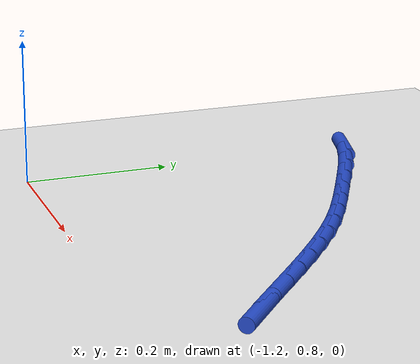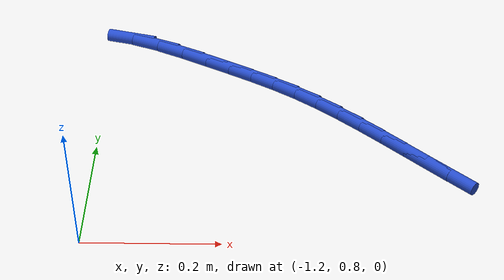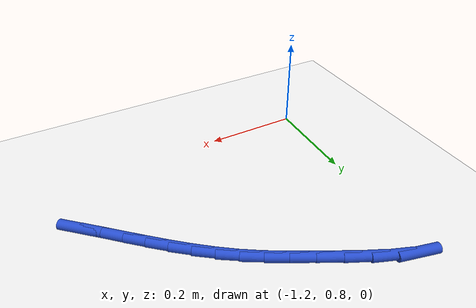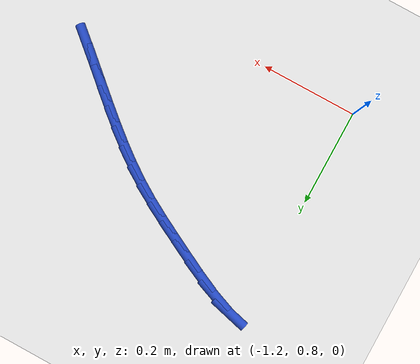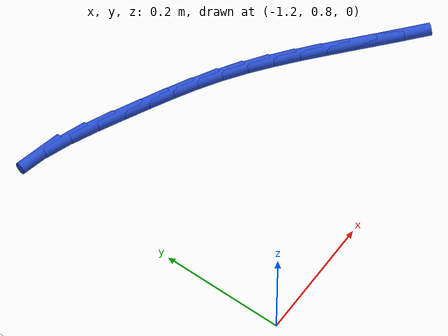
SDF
<sdf version="1.6">
 <world name="default">
  <model name="ground_plane">
   <static>1</static>
   <link name="link">
    <collision name="collision">
     <geometry><plane><normal>0 0 1</normal><size>100 100</size></plane></geometry>
     <surface><friction><ode><mu>100</mu><mu2>50</mu2></ode></friction></surface>
    </collision>
    <visual name="visual">
     <cast_shadows>0</cast_shadows>
     <geometry><plane><normal>0 0 1</normal><size>100 100</size></plane></geometry>
     <material>
      <script><uri>file://media/materials/scripts/gazebo.material</uri><name>Gazebo/WhiteGlow</name></script>
     </material>
    </visual>
   </link>
  </model>
  <model name="line">
   <link name="link_28">
    <pose>-0.667292698881509 0.9317010061118095 0.01 0 1.57 -0.7191388566225841</pose>
    <collision name="collision">
     <geometry><cylinder><radius>0.01</radius><length>0.08</length></cylinder></geometry>
    </collision>
    <visual name="visual">
     <material>
      <script><name>Gazebo/Blue</name><uri>file://media/materials/scripts/gazebo.material</uri></script>
     </material>
     <geometry><cylinder><radius>0.01</radius><length>0.08</length></cylinder></geometry>
    </visual>
   </link>
   <link name="link_29">
    <pose>-0.7001576919193321 0.960475801988674 0.01 0 1.57 -0.7274101344294757</pose>
    <collision name="collision">
     <geometry><cylinder><radius>0.01</radius><length>0.08</length></cylinder></geometry>
    </collision>
    <visual name="visual">
     <material>
      <script><name>Gazebo/Blue</name><uri>file://media/materials/scripts/gazebo.material</uri></script>
     </material>
     <geometry><cylinder><radius>0.01</radius><length>0.08</length></cylinder></geometry>
    </visual>
   </link>
   <link name="link_30">
    <pose>-0.7325665418395403 0.9893282432157199 0.01 0 1.57 -0.7258031718105259</pose>
    <collision name="collision">
     <geometry><cylinder><radius>0.01</radius><length>0.08</length></cylinder></geometry>
    </collision>
    <visual name="visual">
     <material>
      <script><name>Gazebo/Blue</name><uri>file://media/materials/scripts/gazebo.material</uri></script>
     </material>
     <geometry><cylinder><radius>0.01</radius><length>0.08</length></cylinder></geometry>
    </visual>
   </link>
   <link name="link_31">
    <pose>-0.7647657313230898 1.017901410887493 0.01 0 1.57 -0.7140747260560818</pose>
    <collision name="collision">
     <geometry><cylinder><radius>0.01</radius><length>0.08</length></cylinder></geometry>
    </collision>
    <visual name="visual">
     <material>
      <script><name>Gazebo/Blue</name><uri>file://media/materials/scripts/gazebo.material</uri></script>
     </material>
     <geometry><cylinder><radius>0.01</radius><length>0.08</length></cylinder></geometry>
    </visual>
   </link>
   <link name="link_32">
    <pose>-0.7970017430509369 1.0458383860985394 0.01 0 1.57 -0.6919083852375368</pose>
    <collision name="collision">
     <geometry><cylinder><radius>0.01</radius><length>0.08</length></cylinder></geometry>
    </collision>
    <visual name="visual">
     <material>
      <script><name>Gazebo/Blue</name><uri>file://media/materials/scripts/gazebo.material</uri></script>
     </material>
     <geometry><cylinder><radius>0.01</radius><length>0.08</length></cylinder></geometry>
    </visual>
   </link>
   <link name="link_33">
    <pose>-0.8295210597040381 1.072782249943405 0.01 0 1.57 -0.6589465915032207</pose>
    <collision name="collision">
     <geometry><cylinder><radius>0.01</radius><length>0.08</length></cylinder></geometry>
    </collision>
    <visual name="visual">
     <material>
      <script><name>Gazebo/Blue</name><uri>file://media/materials/scripts/gazebo.material</uri></script>
     </material>
     <geometry><cylinder><radius>0.01</radius><length>0.08</length></cylinder></geometry>
    </visual>
   </link>
   <link name="link_34">
    <pose>-0.8625701639633494 1.098376083516635 0.01 0 1.57 -0.6148631902702463</pose>
    <collision name="collision">
     <geometry><cylinder><radius>0.01</radius><length>0.08</length></cylinder></geometry>
    </collision>
    <visual name="visual">
     <material>
      <script><name>Gazebo/Blue</name><uri>file://media/materials/scripts/gazebo.material</uri></script>
     </material>
     <geometry><cylinder><radius>0.01</radius><length>0.08</length></cylinder></geometry>
    </visual>
   </link>
   <link name="link_35">
    <pose>-0.8963955385098271 1.1222629679127754 0.01 0 1.57 -0.5618458516017223</pose>
    <collision name="collision">
     <geometry><cylinder><radius>0.01</radius><length>0.08</length></cylinder></geometry>
    </collision>
    <visual name="visual">
     <material>
      <script><name>Gazebo/Blue</name><uri>file://media/materials/scripts/gazebo.material</uri></script>
     </material>
     <geometry><cylinder><radius>0.01</radius><length>0.08</length></cylinder></geometry>
    </visual>
   </link>
   <link name="link_36">
    <pose>-0.9312535462861457 1.144206917255133 0.01 0 1.57 -0.51687509385871</pose>
    <collision name="collision">
     <geometry><cylinder><radius>0.01</radius><length>0.08</length></cylinder></geometry>
    </collision>
    <visual name="visual">
     <material>
      <script><name>Gazebo/Blue</name><uri>file://media/materials/scripts/gazebo.material</uri></script>
     </material>
     <geometry><cylinder><radius>0.01</radius><length>0.08</length></cylinder></geometry>
    </visual>
   </link>
   <link name="link_37">
    <pose>-0.9674675212022595 1.164791660988698 0.01 0 1.57 -0.4884160553401611</pose>
    <collision name="collision">
     <geometry><cylinder><radius>0.01</radius><length>0.08</length></cylinder></geometry>
    </collision>
    <visual name="visual">
     <material>
      <script><name>Gazebo/Blue</name><uri>file://media/materials/scripts/gazebo.material</uri></script>
     </material>
     <geometry><cylinder><radius>0.01</radius><length>0.08</length></cylinder></geometry>
    </visual>
   </link>
   <link name="link_38">
    <pose>-1.005388599582561 1.184941226242959 0.01 0 1.57 -0.47653960126167877</pose>
    <collision name="collision">
     <geometry><cylinder><radius>0.01</radius><length>0.08</length></cylinder></geometry>
    </collision>
    <visual name="visual">
     <material>
      <script><name>Gazebo/Blue</name><uri>file://media/materials/scripts/gazebo.material</uri></script>
     </material>
     <geometry><cylinder><radius>0.01</radius><length>0.08</length></cylinder></geometry>
    </visual>
   </link>
   <link name="link_39">
    <pose>-1.04536704280676 1.2055789160305022 0.01 0 1.57 -0.46850079729720323</pose>
    <collision name="collision">
     <geometry><cylinder><radius>0.01</radius><length>0.08</length></cylinder></geometry>
    </collision>
    <visual name="visual">
     <material>
      <script><name>Gazebo/Blue</name><uri>file://media/materials/scripts/gazebo.material</uri></script>
     </material>
     <geometry><cylinder><radius>0.01</radius><length>0.08</length></cylinder></geometry>
    </visual>
   </link>
   <link name="link_40">
    <pose>-1.0873217931283763 1.2268114301923025 0.01 0 1.57 -0.4344861967894188</pose>
    <collision name="collision">
     <geometry><cylinder><radius>0.01</radius><length>0.08</length></cylinder></geometry>
    </collision>
    <visual name="visual">
     <material>
      <script><name>Gazebo/Blue</name><uri>file://media/materials/scripts/gazebo.material</uri></script>
     </material>
     <geometry><cylinder><radius>0.01</radius><length>0.08</length></cylinder></geometry>
    </visual>
   </link>
   <link name="link_41">
    <pose>-1.1300628437960494 1.2466459296906856 0.01 0 1.57 -0.3650000847591498</pose>
    <collision name="collision">
     <geometry><cylinder><radius>0.01</radius><length>0.08</length></cylinder></geometry>
    </collision>
    <visual name="visual">
     <material>
      <script><name>Gazebo/Blue</name><uri>file://media/materials/scripts/gazebo.material</uri></script>
     </material>
     <geometry><cylinder><radius>0.01</radius><length>0.08</length></cylinder></geometry>
    </visual>
   </link>
   <link name="link_42">
    <pose>-1.1722244218648865 1.2627568027858482 0.01 0 1.57 -0.24515538938612375</pose>
    <collision name="collision">
     <geometry><cylinder><radius>0.01</radius><length>0.08</length></cylinder></geometry>
    </collision>
    <visual name="visual">
     <material>
      <script><name>Gazebo/Blue</name><uri>file://media/materials/scripts/gazebo.material</uri></script>
     </material>
     <geometry><cylinder><radius>0.01</radius><length>0.08</length></cylinder></geometry>
    </visual>
   </link>
  </model>
 </world>
</sdf>
